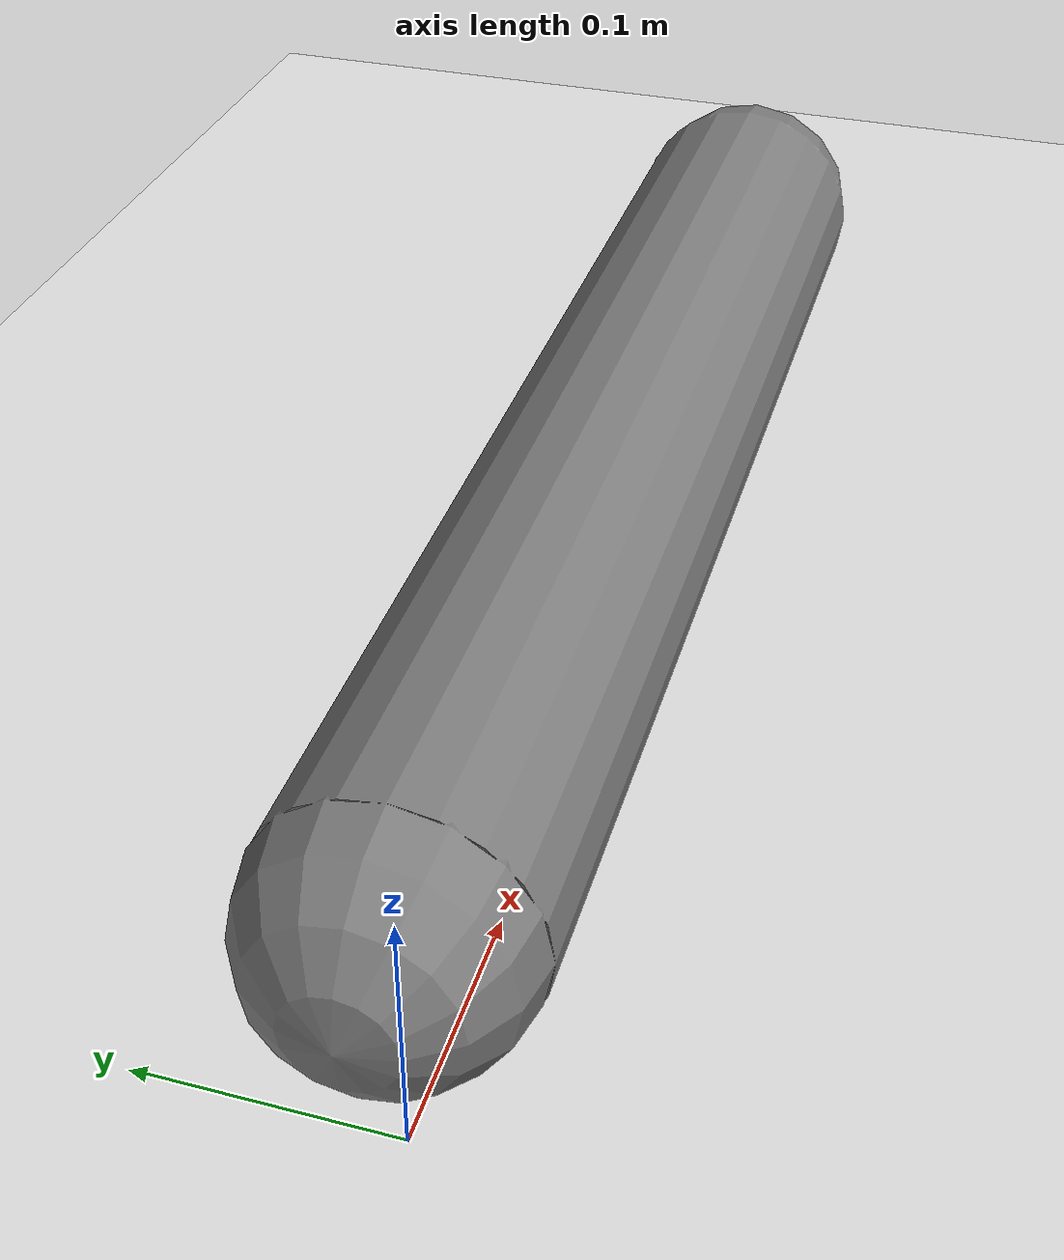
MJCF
<mujoco model="simple_arm">
  <option timestep="0.01"/>
  <worldbody>
    <light pos="0 0 3" dir="0 0 -1"/>
    <geom name="floor" type="plane" size="5 5 0.1" rgba="0.9 0.9 0.9 1"/>
    <body name="arm_base" pos="0 0 0.1">
      <joint name="arm_joint" type="hinge" axis="0 1 0"/>
      <geom name="arm_link" type="capsule" fromto="0 0 0 0.5 0 0" size="0.05" rgba="0.5 0.5 0.5 1"/>
    </body>
  </worldbody>
  <actuator>
    <motor name="arm_motor" joint="arm_joint" gear="100"/>
  </actuator>
</mujoco>
